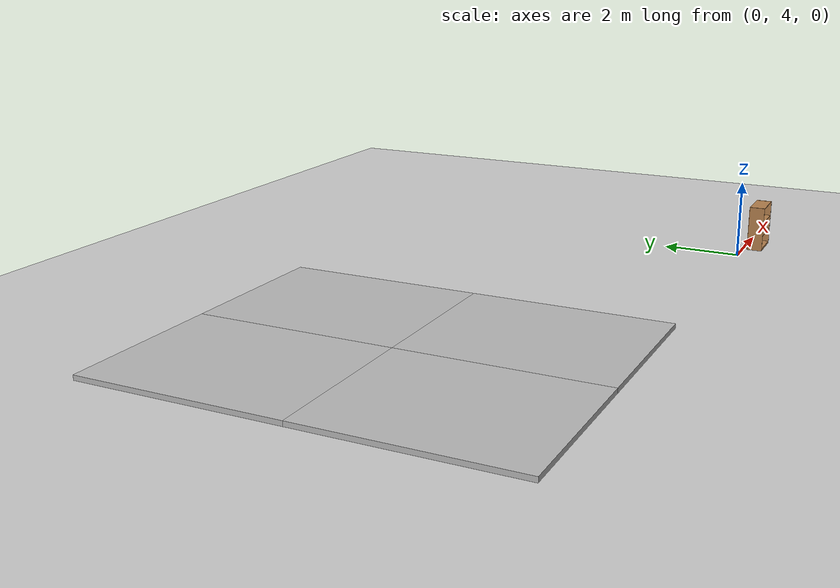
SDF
<sdf version="1.6">
 <world name="default">
  <light name="sun" type="directional">
   <pose>0 0 10 0 -0 0</pose>
   <diffuse>0.8 0.8 0.8 1</diffuse>
   <specular>0.1 0.1 0.1 1</specular>
   <attenuation>
    <range>1000</range>
    <constant>0.9</constant>
    <linear>0.01</linear>
    <quadratic>0.001</quadratic>
   </attenuation>
   <direction>-0.5 0.5 -1</direction>
  </light>
  <model name="ground_plane">
   <static>1</static>
   <link name="link">
    <collision name="collision">
     <geometry><plane><normal>0 0 1</normal><size>100 100</size></plane></geometry>
     <surface><friction><ode><mu>100</mu><mu2>50</mu2></ode></friction></surface>
    </collision>
    <visual name="visual">
     <cast_shadows>0</cast_shadows>
     <geometry><plane><normal>0 0 1</normal><size>100 100</size></plane></geometry>
     <material>
      <script><uri>file://media/materials/scripts/gazebo.material</uri><name>Gazebo/Grey</name></script>
     </material>
    </visual>
   </link>
  </model>
  <gravity>0 0 -9.8</gravity>
  <magnetic_field>6e-06 2.3e-05 -4.2e-05</magnetic_field>
  <atmosphere type="adiabatic"/>
  <physics name="default_physics" default="0" type="ode">
   <max_step_size>0.001</max_step_size>
   <real_time_factor>1</real_time_factor>
   <real_time_update_rate>1000</real_time_update_rate>
  </physics>
  <scene><ambient>0.4 0.4 0.4 1</ambient><background>0.7 0.7 0.7 1</background><shadows>1</shadows></scene>
  <spherical_coordinates>
   <surface_model>EARTH_WGS84</surface_model>
   <latitude_deg>0</latitude_deg>
   <longitude_deg>0</longitude_deg>
   <elevation>0</elevation>
   <heading_deg>0</heading_deg>
  </spherical_coordinates>
  <model name="bookshelf">
   <static>1</static>
   <link name="link">
    <inertial><mass>1</mass></inertial>
    <collision name="back">
     <pose>0 0.005 0.6 0 -0 0</pose>
     <geometry><box><size>0.9 0.01 1.2</size></box></geometry>
    </collision>
    <visual name="visual1">
     <pose>0 0.005 0.6 0 -0 0</pose>
     <geometry><box><size>0.9 0.01 1.2</size></box></geometry>
     <material>
      <script><uri>file://media/materials/scripts/gazebo.material</uri><name>Gazebo/Wood</name></script>
     </material>
    </visual>
    <collision name="left_side">
     <pose>0.45 -0.195 0.6 0 -0 0</pose>
     <geometry><box><size>0.02 0.4 1.2</size></box></geometry>
    </collision>
    <visual name="visual2">
     <pose>0.45 -0.195 0.6 0 -0 0</pose>
     <geometry><box><size>0.02 0.4 1.2</size></box></geometry>
     <material>
      <script><uri>file://media/materials/scripts/gazebo.material</uri><name>Gazebo/Wood</name></script>
     </material>
    </visual>
    <collision name="right_side">
     <pose>-0.45 -0.195 0.6 0 -0 0</pose>
     <geometry><box><size>0.02 0.4 1.2</size></box></geometry>
    </collision>
    <visual name="visual3">
     <pose>-0.45 -0.195 0.6 0 -0 0</pose>
     <geometry><box><size>0.02 0.4 1.2</size></box></geometry>
     <material>
      <script><uri>file://media/materials/scripts/gazebo.material</uri><name>Gazebo/Wood</name></script>
     </material>
    </visual>
    <collision name="bottom">
     <pose>0 -0.195 0.03 0 -0 0</pose>
     <geometry><box><size>0.88 0.4 0.06</size></box></geometry>
    </collision>
    <visual name="visual4">
     <pose>0 -0.195 0.03 0 -0 0</pose>
     <geometry><box><size>0.88 0.4 0.06</size></box></geometry>
     <material>
      <script><uri>file://media/materials/scripts/gazebo.material</uri><name>Gazebo/Wood</name></script>
     </material>
    </visual>
    <collision name="top">
     <pose>0 -0.195 1.19 0 -0 0</pose>
     <geometry><box><size>0.88 0.4 0.02</size></box></geometry>
    </collision>
    <visual name="visual5">
     <pose>0 -0.195 1.19 0 -0 0</pose>
     <geometry><box><size>0.88 0.4 0.02</size></box></geometry>
     <material>
      <script><uri>file://media/materials/scripts/gazebo.material</uri><name>Gazebo/Wood</name></script>
     </material>
    </visual>
    <collision name="low_shelf">
     <pose>0 -0.195 0.43 0 -0 0</pose>
     <geometry><box><size>0.88 0.4 0.02</size></box></geometry>
    </collision>
    <visual name="visual6">
     <pose>0 -0.195 0.43 0 -0 0</pose>
     <geometry><box><size>0.88 0.4 0.02</size></box></geometry>
     <material>
      <script><uri>file://media/materials/scripts/gazebo.material</uri><name>Gazebo/Wood</name></script>
     </material>
    </visual>
    <collision name="high_shelf">
     <pose>0 -0.195 0.8 0 -0 0</pose>
     <geometry><box><size>0.88 0.4 0.02</size></box></geometry>
    </collision>
    <visual name="visual7">
     <pose>0 -0.195 0.8 0 -0 0</pose>
     <geometry><box><size>0.88 0.4 0.02</size></box></geometry>
     <material>
      <script><uri>file://media/materials/scripts/gazebo.material</uri><name>Gazebo/Wood</name></script>
     </material>
    </visual>
   </link>
   <pose>1.1298 3.88885 0 0 -0 0</pose>
  </model>
  <model name="mud_box">
   <static>1</static>
   <link name="link">
    <collision name="collision"><geometry><box><size>8 10 0.2</size></box></geometry></collision>
    <visual name="visual_1">
     <pose>-2 2.5 0 0 -0 0</pose>
     <cast_shadows>0</cast_shadows>
     <geometry><box><size>4 5 0.2</size></box></geometry>
     <material>
      <script>
       <uri>model://mud_box/materials/scripts</uri>
       <uri>model://mud_box/materials/textures</uri>
       <name>vrc/mud</name>
      </script>
     </material>
    </visual>
    <visual name="visual_2">
     <pose>2 2.5 0 0 -0 0</pose>
     <cast_shadows>0</cast_shadows>
     <geometry><box><size>4 5 0.2</size></box></geometry>
     <material>
      <script>
       <uri>model://mud_box/materials/scripts</uri>
       <uri>model://mud_box/materials/textures</uri>
       <name>vrc/mud</name>
      </script>
     </material>
    </visual>
    <visual name="visual_3">
     <pose>2 -2.5 0 0 -0 0</pose>
     <cast_shadows>0</cast_shadows>
     <geometry><box><size>4 5 0.2</size></box></geometry>
     <material>
      <script>
       <uri>model://mud_box/materials/scripts</uri>
       <uri>model://mud_box/materials/textures</uri>
       <name>vrc/mud</name>
      </script>
     </material>
    </visual>
    <visual name="visual_4">
     <pose>-2 -2.5 0 0 -0 0</pose>
     <cast_shadows>0</cast_shadows>
     <geometry><box><size>4 5 0.2</size></box></geometry>
     <material>
      <script>
       <uri>model://mud_box/materials/scripts</uri>
       <uri>model://mud_box/materials/textures</uri>
       <name>vrc/mud</name>
      </script>
     </material>
    </visual>
   </link>
   <pose>-10.2475 8.93791 0 0 -0 0</pose>
  </model>
 </world>
</sdf>
